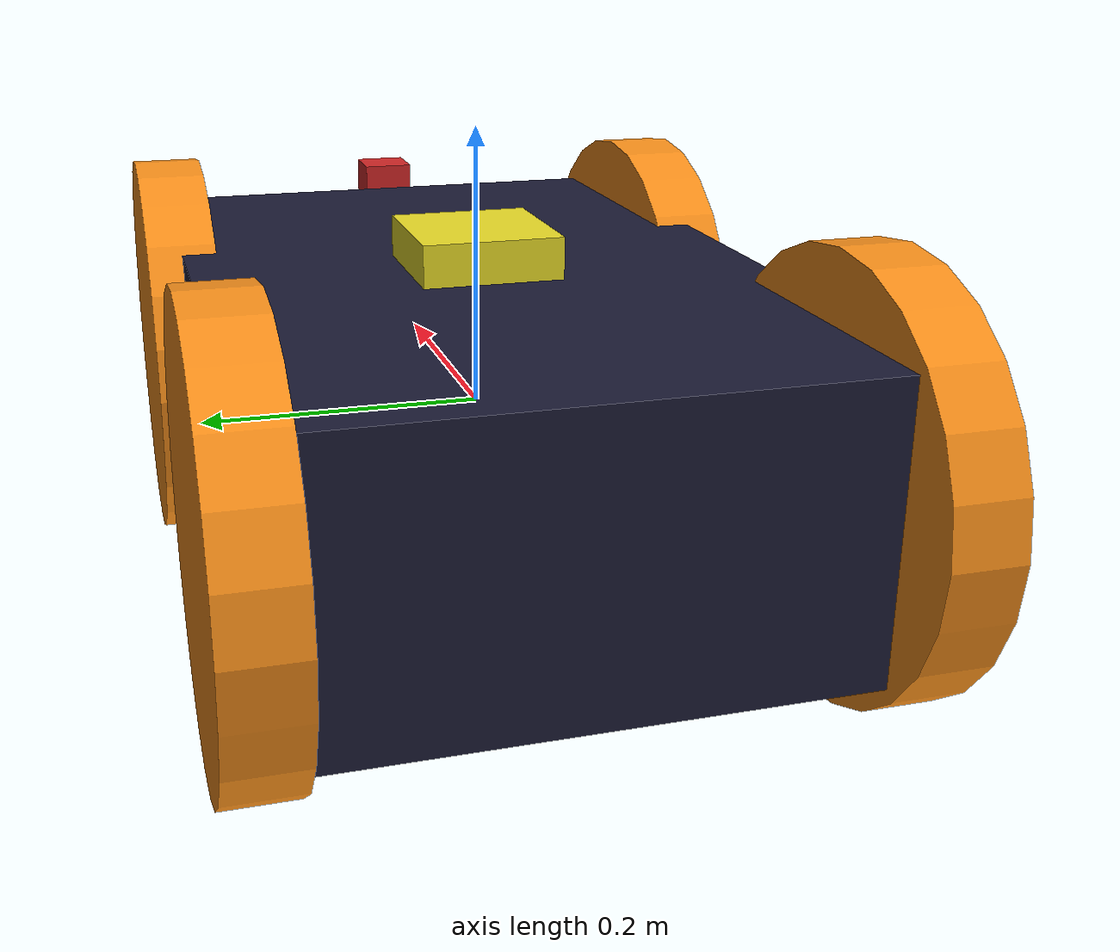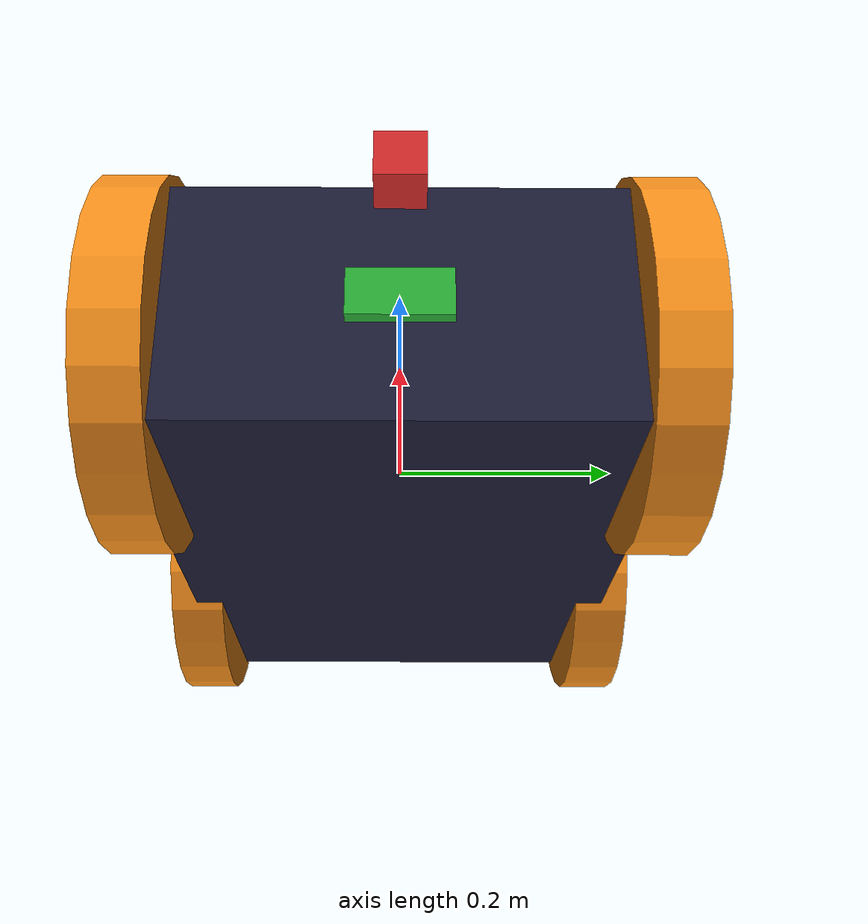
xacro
<?xml version="1.0"?>
<robot xmlns:xacro="http://www.ros.org/wiki/xacro" name="robot">

<!-- base line property -->
<xacro:property name="base_link_length" value="0.6"/>
<xacro:property name="base_link_weigth" value="0.4"/>
<xacro:property name="base_link_height" value="0.2"/>
<!-- wheel property-->
<xacro:property name="wheel_row" value="1.57"/>
<xacro:property name="wheel_length" value="0.05"/>
<xacro:property name="wheel_radius" value="0.15"/>
<!-- wheel_joint property -->
<xacro:property name="wheel_joint_x" value="0.2"/>
<xacro:property name="wheel_joint_y" value="0.2"/>
<xacro:property name="wheel_joint_z" value="0.2"/>
<xacro:property name="wheel_axis" value="1"/>
<xacro:property name="effort" value="10"/>
<xacro:property name="velocity" value="5"/>
<xacro:property name="upper" value="3.14"/>
<xacro:property name="lower" value="3.14"/>
<!--property of moment inertial-->
<xacro:property name="mass" value="0.5"/>
<xacro:property name="ixx" value="0.01"/>
<xacro:property name="iyy" value="0.01"/>
<xacro:property name="izz" value="0.01"/>
<link name="dummy" >

</link>
<joint name="dummy_base_link" type="fixed">
	<parent link="dummy"/>
	<child link="base_link"/>
</joint>
<material name="black">
	<color rgba="0.1 0.1 0.2 1"/>
</material>
<link name="base_link">
	<visual>
		<origin rpy="0 0 0" xyz="0 0 0"/>
		<geometry>
			<box size="${base_link_length} ${base_link_weigth} ${base_link_height}"/>
		</geometry>
		<material name="black"/>
	</visual>
	<collision>
		<origin rpy="0 0 0" xyz="0 0 0"/>
		<geometry>
			<box size="${base_link_length} ${base_link_weigth} ${base_link_height}"/>
		</geometry>
		<material name="black"/>
	</collision>
	<inertial>
		<mass value="${mass}"/>
		<origin xyz=" 0 0 0 "/>
		<inertia ixx="${ixx}" ixy="0" ixz="0" iyy="${iyy}" iyz="0" izz="${izz}"/>
	</inertial>
</link>

<link name="back_left_wheel">
	<visual>
		<origin rpy="${wheel_row} 0 0" xyz="0 0 0"/>
		<geometry>
			<cylinder length="${wheel_length}" radius="${wheel_radius}"/>
		</geometry>
	</visual>
	<collision>
		<origin rpy="${wheel_row} 0 0" xyz="0 0 0"/>
		<geometry>
			<cylinder length="${wheel_length}" radius="${wheel_radius}"/>
		</geometry>
	</collision>
	<inertial>
		<mass value="${mass}"/>
		<origin xyz=" 0 0 0 "/>
		<inertia ixx="${ixx}" ixy="0" ixz="0" iyy="${iyy}" iyz="0" izz="${izz}"/>
	</inertial>
</link>
<joint name="joint_back_left_wheel" type="continuous">
	<origin xyz="${-wheel_joint_x} ${-wheel_joint_y} 0"/>
	<parent link="base_link"/>
	<child link="back_left_wheel"/>
	<axis xyz="0 ${wheel_axis} 0"/>
	<limit effort="${effort}" velocity="${velocity}" lower="${lower}" upper="${upper}"/>
</joint>

<link name="back_right_wheel">
	<visual>
		<origin rpy="${-wheel_row} 0 0" xyz="0 0 0"/>
		<geometry>
			<cylinder length="${wheel_length}" radius="${wheel_radius}"/>
		</geometry>
	</visual>
	<collision>
		<origin rpy="${-wheel_row} 0 0" xyz="0 0 0"/>
		<geometry>
			<cylinder length="${wheel_length}" radius="${wheel_radius}"/>
		</geometry>
	</collision>
	<inertial>
		<mass value="${mass}"/>
		<origin xyz=" 0 0 0 "/>
		<inertia ixx="${ixx}" ixy="0" ixz="0" iyy="${iyy}" iyz="0" izz="${izz}"/>
	</inertial>
</link>
<joint name="joint_back_right_wheel" type="continuous">
	<origin xyz="${-wheel_joint_x} ${wheel_joint_y} 0"/>
	<parent link="base_link"/>
	<child link="back_right_wheel"/>
	<axis xyz="0 ${wheel_axis} 0"/>
	<limit effort="${effort}" velocity="${velocity}" lower="${lower}" upper="${upper}"/>

</joint>
<link name="front_right_wheel">
	<visual>
		<origin rpy="${wheel_row} 0 0" xyz="0 0 0"/>
		<geometry>
			<cylinder length="${wheel_length}" radius="${wheel_radius}"/>
		</geometry>
	</visual>
	<collision>
		<origin rpy="${wheel_row} 0 0" xyz="0 0 0"/>
		<geometry>
			<cylinder length="${-wheel_length}" radius="${wheel_radius}"/>
		</geometry>
	</collision>
	<inertial>
		<mass value="${mass}"/>
		<origin xyz=" 0 0 0 "/>
		<inertia ixx="${ixx}" ixy="0" ixz="0" iyy="${iyy}" iyz="0" izz="${izz}"/>
	</inertial>
</link>
<joint name="joint_front_right_wheel" type="continuous">
	<origin xyz="${wheel_joint_x} ${wheel_joint_y} 0"/>
	<parent link="base_link"/>
	<child link="front_right_wheel"/>
	<axis xyz="0 ${wheel_axis} 0"/>
	<limit effort="${effort}" velocity="${velocity}" lower="${lower}" upper="${upper}"/>

</joint>

<link name="front_left_wheel">
	<visual>
		<origin rpy="${-wheel_row} 0 0" xyz="0 0 0"/>>
		<geometry>
			<cylinder length="${wheel_length}" radius="${wheel_radius}"/>
		</geometry>
	</visual>
	<collision>
		<origin rpy="${-wheel_row} 0 0" xyz="0 0 0"/>
		<geometry>
			<cylinder length="${-wheel_length}" radius="${wheel_radius}"/>
		</geometry>
	</collision>
	<inertial>
		<mass value="${mass}"/>
		<origin xyz=" 0 0 0 "/>
		<inertia ixx="${ixx}" ixy="0" ixz="0" iyy="${iyy}" iyz="0" izz="${izz}"/>
	</inertial>

</link>
<joint name="joint_front_left_wheel" type="continuous">
	<origin xyz="${wheel_joint_x} ${-wheel_joint_y} 0"/>
	<parent link="base_link"/>
	<child link="front_left_wheel"/>
	<axis xyz="0 ${wheel_axis} 0"/>
	<limit effort="${effort}" velocity="${velocity}" lower="${lower}" upper="${upper}"/>
</joint>

 <!-- laser_scan -->
<link name="laser_scan">
	<visual>
	<origin rpy="0 0 0" xyz="0 0 0"/>
		<geometry>
			<box size="0.04 0.04 0.04"/>
		</geometry>
	</visual>
	<collision>
	<origin rpy="0 0 0" xyz="0 0 0"/>
		<geometry>
			<box size="0.06 0.04 0.04"/>
		</geometry>
	</collision>
</link>
<joint name="base_link_laser_scan" type="fixed">
	<origin xyz="0.32 0 0.1"/>
	<parent link="base_link"/>
	<child link="laser_scan"/>
</joint>

<!-- camera_scan-->
<link name="camera_scan">
	<visual>
	<origin rpy="0 0 0" xyz="0 0 0"/>
		<geometry>
			<box size="0.02 0.08 0.04"/>
		</geometry>
	</visual>
</link>
<joint name="base_link_camera_scan" type="fixed">
	<origin xyz="0.3 0 0.0"/>
	<parent link="base_link"/>
	<child link="camera_scan"/>
</joint>

<!-- imu_link-->
<link name="imu_scan">
	<visual>
	<origin rpy="0 0 0" xyz="0 0 0"/>
		<geometry>
			<box size="0.1 0.1 0.06"/>
		</geometry>
	</visual>
</link>
<joint name="base_link_IMU_scan" type="fixed">
	<origin xyz="0 0 0.1"/>
	<parent link="base_link"/>
	<child link="imu_scan"/>
</joint>

<gazebo reference="base_link">
	<material>Gazebo/Gray</material>
	<turnGravityOff>false</turnGravityOff>
</gazebo>
<gazebo reference="front_right_wheel">
	<material>Gazebo/Orange</material>
	<turnGravityOff>false</turnGravityOff>
</gazebo>
<gazebo reference="front_left_wheel">
	<material>Gazebo/Orange</material>
	<turnGravityOff>false</turnGravityOff>
</gazebo>
<gazebo reference="back_right_wheel">
	<material>Gazebo/Orange</material>
	<turnGravityOff>false</turnGravityOff>
</gazebo>
<gazebo reference="back_left_wheel">
	<material>Gazebo/Orange</material>
	<turnGravityOff>false</turnGravityOff>
</gazebo>
<gazebo>
	<plugin  name="differential_drive_robot" filename="libgazebo_ros_diff_drive.so">
		<robotNamespace>/</robotNamespace>
		<commandTopic>cmd_vel</commandTopic>
		<odometryTopic>odom</odometryTopic>
		<odometryFrame>odom</odometryFrame>
		<robotBaseFrame>base_link</robotBaseFrame>
		<publishWheelTF>false</publishWheelTF>
		<publishOdomTF>true</publishOdomTF>
		<publishWheelJointState>false</publishWheelJointState>
		<legacyMode>true</legacyMode>

		<wheelSeparation>${base_link_length}</wheelSeparation>
		<wheelDiameter>${2*wheel_radius}</wheelDiameter>
		<wheelAcceleration>1.0</wheelAcceleration>
		<wheelTorque>20.0</wheelTorque>
		<updateRate>10.0</updateRate>
		<leftJoint>joint_front_left_wheel</leftJoint>
		<rightJoint>joint_front_right_wheel</rightJoint>
		<left_joint>joint_back_left_wheel</left_joint>
		<right_joint>joint_back_right_wheel</right_joint>
	</plugin>
</gazebo>
<!-- plugin laser scan-->
<gazebo reference="laser_scan">
	<material>Gazebo/Red</material>
	<turnGravityOff>true</turnGravityOff>
	<sensor type="ray" name="laser_scan_sensor">
		<pose>0 0.04 0 0 0 0</pose>
		<visualize>true</visualize>
		<update_rate>10.0</update_rate>
		<ray>
			<scan>
				<horizontal>
					<sample>500</sample>
					<resolution>1.0</resolution>
					<min_angle>-1.57</min_angle>
					<max_angle>1.57</max_angle>
				</horizontal>
			</scan>
			<range>
				<min>0.1</min>
				<max>10</max>
				<resolution>1</resolution>
			</range>
		</ray>
		<plugin name="laser_scanner" filename="libgazebo_ros_laser.so">
			<topicName>/scan</topicName>
			<frameName>laser_scan</frameName>
		</plugin >
	</sensor>
</gazebo>

<!-- camera plugin -->
  <gazebo reference="camera_scan">
  	<material>Gazebo/Green</material>
	<turnGravityOff>true</turnGravityOff>
    <sensor type="camera" name="camera1">
      <update_rate>30.0</update_rate>
      <camera name="head">
        <horizontal_fov>1.3962634</horizontal_fov>
        <image>
          <width>800</width>
          <height>800</height>
          <format>R8G8B8</format>
        </image>
        <clip>
          <near>0.02</near>
          <far>300</far>
        </clip>
        <noise>
          <type>gaussian</type>
          <!-- Noise is sampled independently per pixel on each frame.
               That pixel's noise value is added to each of its color
               channels, which at that point lie in the range [0,1]. -->
          <mean>0.0</mean>
          <stddev>0.007</stddev>
        </noise>
      </camera>
      <plugin name="camera_controller" filename="libgazebo_ros_camera.so">
        <alwaysOn>true</alwaysOn>
        <updateRate>0.0</updateRate>
        <cameraName>rrbot/camera1</cameraName>
        <imageTopicName>image_raw</imageTopicName>
        <cameraInfoTopicName>camera_info</cameraInfoTopicName>
        <frameName>camera_scan</frameName>
        <hackBaseline>0.07</hackBaseline>
        <distortionK1>0.0</distortionK1>
        <distortionK2>0.0</distortionK2>
        <distortionK3>0.0</distortionK3>
        <distortionT1>0.0</distortionT1>
        <distortionT2>0.0</distortionT2>
      </plugin>
    </sensor>
  </gazebo>

<gazebo reference="imu_scan">
 <material>Gazebo/Yellow</material>
 <turnGravityOff>true</turnGravityOff>
    <gravity>true</gravity>
    <sensor name="imu_sensor" type="imu">
      <always_on>true</always_on>
      <update_rate>100</update_rate>
      <visualize>true</visualize>
      <topic>__default_topic__</topic>
      <plugin name="imu_plugin" filename="libgazebo_ros_imu_sensor.so" >
        <topicName>imu</topicName>
        <bodyName>imu_scan</bodyName>
        <updateRateHZ>10.0</updateRateHZ>
        <gaussianNoise>0.0</gaussianNoise>
        <xyzOffset>0 0 0</xyzOffset>
        <rpyOffset>0 0 0</rpyOffset>
        <frameName>imu_scan</frameName>
        <initialOrientationAsReference>false</initialOrientationAsReference>
      </plugin>
      <pose>0 0 0 0 0 0</pose>
    </sensor>
  </gazebo>
</robot>
